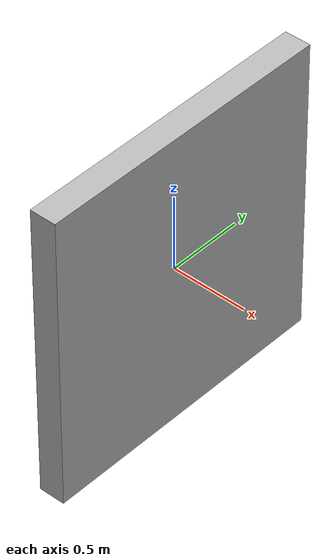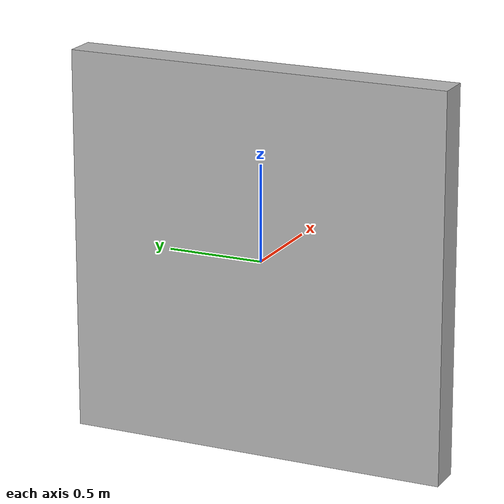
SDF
<?xml version="1.0" ?>
<sdf version="1.5">
  <model name="Fast Sign">
    <static>true</static>
    <link name="link">
      <collision name="collision">
        <geometry>
          <mesh>
            <uri>model://fast_sign/meshes/fast_sign.dae</uri>
          </mesh>
        </geometry>
      </collision>
      <visual name="visual">
        <geometry>
          <mesh>
            <uri>model://fast_sign/meshes/fast_sign.dae</uri>
          </mesh>
        </geometry>
      </visual>
    </link>
  </model>
</sdf>
